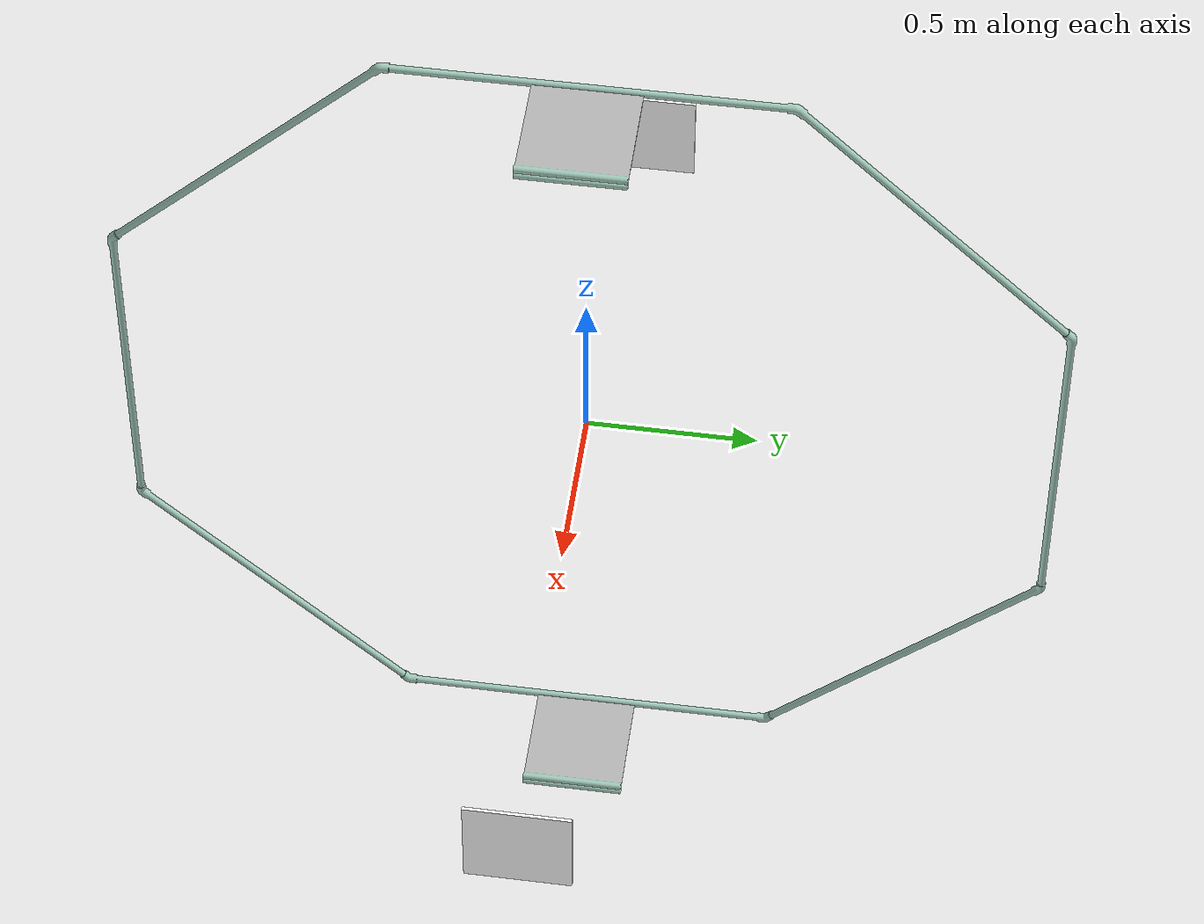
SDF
<?xml version="1.0"?>
<sdf version="1.11">
  <model name="robosub25_octagon">
    <static>1</static>

    <link name="octagon">
      <pose>0 0 0 0 0 0</pose>
      <visual name="octagon_vis">
        <pose>0 0 0 0 0 0</pose>
        <geometry>
          <mesh>
            <uri>model://octagon/octagon.dae</uri>
          </mesh>
        </geometry>
      </visual>
      <collision name="octagon_collision">
        <pose>0 0 0 0 0 0</pose>
        <geometry>
          <mesh>
            <uri>model://octagon/octagon.dae</uri>
          </mesh>
        </geometry>
      </collision>
    </link>

    <link name="box_reef_shark">
      <pose>-1.37 0 -0.2 0 0 -1.57</pose>
      <visual name="box_reef_shark_vis">
        <geometry>
          <box>
            <size>0.305 0.01 0.305</size>
          </box>
        </geometry>
        <material>
          <diffuse>1.0 1.0 1.0</diffuse>
          <specular>1.0 1.0 1.0</specular>
          <pbr>
            <metal>
              <albedo_map>file://media/materials/textures/robosub25/Task01_ReefShark.png</albedo_map>
              <emissive_map>file://media/materials/textures/robosub25/Task01_ReefShark.png</emissive_map>
            </metal>
          </pbr>
        </material>
      </visual>
    </link>

    <link name="box_saw_fish">
      <pose>1.37 0 -0.2 0 0 1.57</pose>
      <visual name="box_saw_fish_vis">
        <geometry>
          <box>
            <size>0.305 0.01 0.305</size>
          </box>
        </geometry>
        <material>
          <diffuse>1.0 1.0 1.0</diffuse>
          <specular>1.0 1.0 1.0</specular>
          <pbr>
            <metal>
              <albedo_map>file://media/materials/textures/robosub25/Task01_Sawfish.png</albedo_map>
              <emissive_map>file://media/materials/textures/robosub25/Task01_Sawfish.png</emissive_map>
            </metal>
          </pbr>
        </material>
      </visual>
    </link>
  </model>
</sdf>
